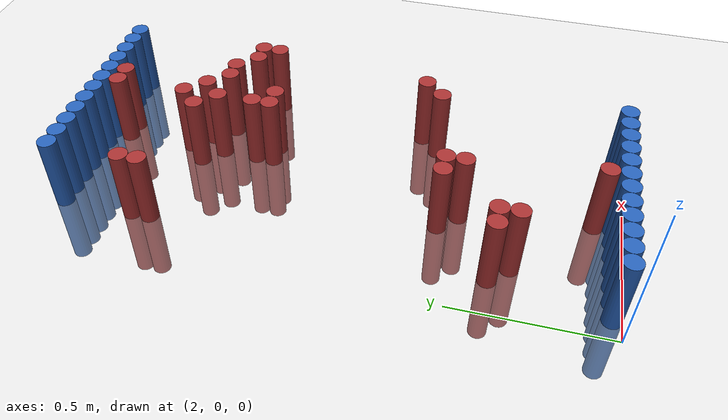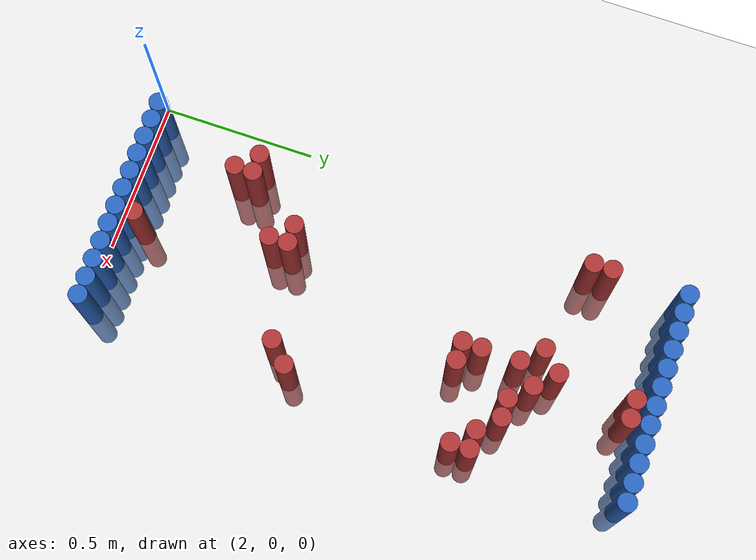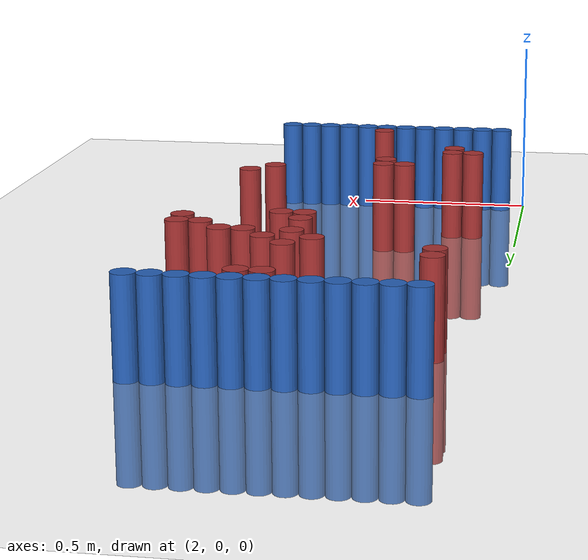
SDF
<sdf version="1.6">
 <world name="default">
  <model name="ground_plane">
   <static>1</static>
   <link name="link">
    <collision name="collision">
     <geometry><plane><normal>0 0 1</normal><size>100 100</size></plane></geometry>
     <surface><friction><ode><mu>100</mu><mu2>50</mu2></ode></friction></surface>
    </collision>
    <visual name="visual">
     <cast_shadows>0</cast_shadows>
     <geometry><plane><normal>0 0 1</normal><size>100 100</size></plane></geometry>
     <material>
      <script><uri>file://media/materials/scripts/gazebo.material</uri><name>Gazebo/Grey</name></script>
     </material>
    </visual>
   </link>
  </model>
  <model name="unit_cylinder_96">
   <static>1</static>
   <pose>2.130000 1.770000 0.000000 0.000000 0.000000 0.000000</pose>
   <link name="link">
    <inertial>
     <mass>1</mass>
     <inertia><ixx>0.145833</ixx><ixy>0</ixy><ixz>0</ixz><iyy>0.145833</iyy><iyz>0</iyz><izz>0.125</izz></inertia>
    </inertial>
    <collision name="collision">
     <geometry><cylinder><radius>0.030000</radius><length>0.5</length></cylinder></geometry>
    </collision>
    <visual name="visual">
     <geometry><cylinder><radius>0.030000</radius><length>0.5</length></cylinder></geometry>
     <material>
      <ambient>0.152000 0.379000 0.720000 1</ambient>
      <diffuse>0.152000 0.379000 0.720000 1</diffuse>
     </material>
     <material>
      <script><name>Gazebo/Grey</name><uri>file://media/materials/scripts/gazebo.material</uri></script>
     </material>
    </visual>
   </link>
  </model>
  <model name="unit_cylinder_97">
   <static>1</static>
   <pose>2.190000 1.770000 0.000000 0.000000 0.000000 0.000000</pose>
   <link name="link">
    <inertial>
     <mass>1</mass>
     <inertia><ixx>0.145833</ixx><ixy>0</ixy><ixz>0</ixz><iyy>0.145833</iyy><iyz>0</iyz><izz>0.125</izz></inertia>
    </inertial>
    <collision name="collision">
     <geometry><cylinder><radius>0.030000</radius><length>0.5</length></cylinder></geometry>
    </collision>
    <visual name="visual">
     <geometry><cylinder><radius>0.030000</radius><length>0.5</length></cylinder></geometry>
     <material>
      <ambient>0.152000 0.379000 0.720000 1</ambient>
      <diffuse>0.152000 0.379000 0.720000 1</diffuse>
     </material>
     <material>
      <script><name>Gazebo/Grey</name><uri>file://media/materials/scripts/gazebo.material</uri></script>
     </material>
    </visual>
   </link>
  </model>
  <model name="unit_cylinder_98">
   <static>1</static>
   <pose>2.250000 1.770000 0.000000 0.000000 0.000000 0.000000</pose>
   <link name="link">
    <inertial>
     <mass>1</mass>
     <inertia><ixx>0.145833</ixx><ixy>0</ixy><ixz>0</ixz><iyy>0.145833</iyy><iyz>0</iyz><izz>0.125</izz></inertia>
    </inertial>
    <collision name="collision">
     <geometry><cylinder><radius>0.030000</radius><length>0.5</length></cylinder></geometry>
    </collision>
    <visual name="visual">
     <geometry><cylinder><radius>0.030000</radius><length>0.5</length></cylinder></geometry>
     <material>
      <ambient>0.152000 0.379000 0.720000 1</ambient>
      <diffuse>0.152000 0.379000 0.720000 1</diffuse>
     </material>
     <material>
      <script><name>Gazebo/Grey</name><uri>file://media/materials/scripts/gazebo.material</uri></script>
     </material>
    </visual>
   </link>
  </model>
  <model name="unit_cylinder_99">
   <static>1</static>
   <pose>2.310000 1.770000 0.000000 0.000000 0.000000 0.000000</pose>
   <link name="link">
    <inertial>
     <mass>1</mass>
     <inertia><ixx>0.145833</ixx><ixy>0</ixy><ixz>0</ixz><iyy>0.145833</iyy><iyz>0</iyz><izz>0.125</izz></inertia>
    </inertial>
    <collision name="collision">
     <geometry><cylinder><radius>0.030000</radius><length>0.5</length></cylinder></geometry>
    </collision>
    <visual name="visual">
     <geometry><cylinder><radius>0.030000</radius><length>0.5</length></cylinder></geometry>
     <material>
      <ambient>0.152000 0.379000 0.720000 1</ambient>
      <diffuse>0.152000 0.379000 0.720000 1</diffuse>
     </material>
     <material>
      <script><name>Gazebo/Grey</name><uri>file://media/materials/scripts/gazebo.material</uri></script>
     </material>
    </visual>
   </link>
  </model>
  <model name="unit_cylinder_100">
   <static>1</static>
   <pose>2.370000 1.770000 0.000000 0.000000 0.000000 0.000000</pose>
   <link name="link">
    <inertial>
     <mass>1</mass>
     <inertia><ixx>0.145833</ixx><ixy>0</ixy><ixz>0</ixz><iyy>0.145833</iyy><iyz>0</iyz><izz>0.125</izz></inertia>
    </inertial>
    <collision name="collision">
     <geometry><cylinder><radius>0.030000</radius><length>0.5</length></cylinder></geometry>
    </collision>
    <visual name="visual">
     <geometry><cylinder><radius>0.030000</radius><length>0.5</length></cylinder></geometry>
     <material>
      <ambient>0.152000 0.379000 0.720000 1</ambient>
      <diffuse>0.152000 0.379000 0.720000 1</diffuse>
     </material>
     <material>
      <script><name>Gazebo/Grey</name><uri>file://media/materials/scripts/gazebo.material</uri></script>
     </material>
    </visual>
   </link>
  </model>
  <model name="unit_cylinder_101">
   <static>1</static>
   <pose>2.430000 1.770000 0.000000 0.000000 0.000000 0.000000</pose>
   <link name="link">
    <inertial>
     <mass>1</mass>
     <inertia><ixx>0.145833</ixx><ixy>0</ixy><ixz>0</ixz><iyy>0.145833</iyy><iyz>0</iyz><izz>0.125</izz></inertia>
    </inertial>
    <collision name="collision">
     <geometry><cylinder><radius>0.030000</radius><length>0.5</length></cylinder></geometry>
    </collision>
    <visual name="visual">
     <geometry><cylinder><radius>0.030000</radius><length>0.5</length></cylinder></geometry>
     <material>
      <ambient>0.152000 0.379000 0.720000 1</ambient>
      <diffuse>0.152000 0.379000 0.720000 1</diffuse>
     </material>
     <material>
      <script><name>Gazebo/Grey</name><uri>file://media/materials/scripts/gazebo.material</uri></script>
     </material>
    </visual>
   </link>
  </model>
  <model name="unit_cylinder_102">
   <static>1</static>
   <pose>2.490000 1.770000 0.000000 0.000000 0.000000 0.000000</pose>
   <link name="link">
    <inertial>
     <mass>1</mass>
     <inertia><ixx>0.145833</ixx><ixy>0</ixy><ixz>0</ixz><iyy>0.145833</iyy><iyz>0</iyz><izz>0.125</izz></inertia>
    </inertial>
    <collision name="collision">
     <geometry><cylinder><radius>0.030000</radius><length>0.5</length></cylinder></geometry>
    </collision>
    <visual name="visual">
     <geometry><cylinder><radius>0.030000</radius><length>0.5</length></cylinder></geometry>
     <material>
      <ambient>0.152000 0.379000 0.720000 1</ambient>
      <diffuse>0.152000 0.379000 0.720000 1</diffuse>
     </material>
     <material>
      <script><name>Gazebo/Grey</name><uri>file://media/materials/scripts/gazebo.material</uri></script>
     </material>
    </visual>
   </link>
  </model>
  <model name="unit_cylinder_103">
   <static>1</static>
   <pose>2.550000 1.770000 0.000000 0.000000 0.000000 0.000000</pose>
   <link name="link">
    <inertial>
     <mass>1</mass>
     <inertia><ixx>0.145833</ixx><ixy>0</ixy><ixz>0</ixz><iyy>0.145833</iyy><iyz>0</iyz><izz>0.125</izz></inertia>
    </inertial>
    <collision name="collision">
     <geometry><cylinder><radius>0.030000</radius><length>0.5</length></cylinder></geometry>
    </collision>
    <visual name="visual">
     <geometry><cylinder><radius>0.030000</radius><length>0.5</length></cylinder></geometry>
     <material>
      <ambient>0.152000 0.379000 0.720000 1</ambient>
      <diffuse>0.152000 0.379000 0.720000 1</diffuse>
     </material>
     <material>
      <script><name>Gazebo/Grey</name><uri>file://media/materials/scripts/gazebo.material</uri></script>
     </material>
    </visual>
   </link>
  </model>
  <model name="unit_cylinder_104">
   <static>1</static>
   <pose>2.610000 1.770000 0.000000 0.000000 0.000000 0.000000</pose>
   <link name="link">
    <inertial>
     <mass>1</mass>
     <inertia><ixx>0.145833</ixx><ixy>0</ixy><ixz>0</ixz><iyy>0.145833</iyy><iyz>0</iyz><izz>0.125</izz></inertia>
    </inertial>
    <collision name="collision">
     <geometry><cylinder><radius>0.030000</radius><length>0.5</length></cylinder></geometry>
    </collision>
    <visual name="visual">
     <geometry><cylinder><radius>0.030000</radius><length>0.5</length></cylinder></geometry>
     <material>
      <ambient>0.152000 0.379000 0.720000 1</ambient>
      <diffuse>0.152000 0.379000 0.720000 1</diffuse>
     </material>
     <material>
      <script><name>Gazebo/Grey</name><uri>file://media/materials/scripts/gazebo.material</uri></script>
     </material>
    </visual>
   </link>
  </model>
  <model name="unit_cylinder_105">
   <static>1</static>
   <pose>2.670000 1.770000 0.000000 0.000000 0.000000 0.000000</pose>
   <link name="link">
    <inertial>
     <mass>1</mass>
     <inertia><ixx>0.145833</ixx><ixy>0</ixy><ixz>0</ixz><iyy>0.145833</iyy><iyz>0</iyz><izz>0.125</izz></inertia>
    </inertial>
    <collision name="collision">
     <geometry><cylinder><radius>0.030000</radius><length>0.5</length></cylinder></geometry>
    </collision>
    <visual name="visual">
     <geometry><cylinder><radius>0.030000</radius><length>0.5</length></cylinder></geometry>
     <material>
      <ambient>0.152000 0.379000 0.720000 1</ambient>
      <diffuse>0.152000 0.379000 0.720000 1</diffuse>
     </material>
     <material>
      <script><name>Gazebo/Grey</name><uri>file://media/materials/scripts/gazebo.material</uri></script>
     </material>
    </visual>
   </link>
  </model>
  <model name="unit_cylinder_106">
   <static>1</static>
   <pose>2.730000 1.770000 0.000000 0.000000 0.000000 0.000000</pose>
   <link name="link">
    <inertial>
     <mass>1</mass>
     <inertia><ixx>0.145833</ixx><ixy>0</ixy><ixz>0</ixz><iyy>0.145833</iyy><iyz>0</iyz><izz>0.125</izz></inertia>
    </inertial>
    <collision name="collision">
     <geometry><cylinder><radius>0.030000</radius><length>0.5</length></cylinder></geometry>
    </collision>
    <visual name="visual">
     <geometry><cylinder><radius>0.030000</radius><length>0.5</length></cylinder></geometry>
     <material>
      <ambient>0.152000 0.379000 0.720000 1</ambient>
      <diffuse>0.152000 0.379000 0.720000 1</diffuse>
     </material>
     <material>
      <script><name>Gazebo/Grey</name><uri>file://media/materials/scripts/gazebo.material</uri></script>
     </material>
    </visual>
   </link>
  </model>
  <model name="unit_cylinder_107">
   <static>1</static>
   <pose>2.790000 1.770000 0.000000 0.000000 0.000000 0.000000</pose>
   <link name="link">
    <inertial>
     <mass>1</mass>
     <inertia><ixx>0.145833</ixx><ixy>0</ixy><ixz>0</ixz><iyy>0.145833</iyy><iyz>0</iyz><izz>0.125</izz></inertia>
    </inertial>
    <collision name="collision">
     <geometry><cylinder><radius>0.030000</radius><length>0.5</length></cylinder></geometry>
    </collision>
    <visual name="visual">
     <geometry><cylinder><radius>0.030000</radius><length>0.5</length></cylinder></geometry>
     <material>
      <ambient>0.152000 0.379000 0.720000 1</ambient>
      <diffuse>0.152000 0.379000 0.720000 1</diffuse>
     </material>
     <material>
      <script><name>Gazebo/Grey</name><uri>file://media/materials/scripts/gazebo.material</uri></script>
     </material>
    </visual>
   </link>
  </model>
  <model name="unit_cylinder_125">
   <static>1</static>
   <pose>2.490000 1.710000 0.000000 0.000000 0.000000 0.000000</pose>
   <link name="link">
    <inertial>
     <mass>1</mass>
     <inertia><ixx>0.145833</ixx><ixy>0</ixy><ixz>0</ixz><iyy>0.145833</iyy><iyz>0</iyz><izz>0.125</izz></inertia>
    </inertial>
    <collision name="collision">
     <geometry><cylinder><radius>0.030000</radius><length>0.5</length></cylinder></geometry>
    </collision>
    <visual name="visual">
     <geometry><cylinder><radius>0.030000</radius><length>0.5</length></cylinder></geometry>
     <material>
      <ambient>0.648000 0.192000 0.192000 1</ambient>
      <diffuse>0.648000 0.192000 0.192000 1</diffuse>
     </material>
     <material>
      <script><name>Gazebo/Grey</name><uri>file://media/materials/scripts/gazebo.material</uri></script>
     </material>
    </visual>
   </link>
  </model>
  <model name="unit_cylinder_126">
   <static>1</static>
   <pose>2.550000 1.710000 0.000000 0.000000 0.000000 0.000000</pose>
   <link name="link">
    <inertial>
     <mass>1</mass>
     <inertia><ixx>0.145833</ixx><ixy>0</ixy><ixz>0</ixz><iyy>0.145833</iyy><iyz>0</iyz><izz>0.125</izz></inertia>
    </inertial>
    <collision name="collision">
     <geometry><cylinder><radius>0.030000</radius><length>0.5</length></cylinder></geometry>
    </collision>
    <visual name="visual">
     <geometry><cylinder><radius>0.030000</radius><length>0.5</length></cylinder></geometry>
     <material>
      <ambient>0.648000 0.192000 0.192000 1</ambient>
      <diffuse>0.648000 0.192000 0.192000 1</diffuse>
     </material>
     <material>
      <script><name>Gazebo/Grey</name><uri>file://media/materials/scripts/gazebo.material</uri></script>
     </material>
    </visual>
   </link>
  </model>
  <model name="unit_cylinder_136">
   <static>1</static>
   <pose>2.130000 1.530000 0.000000 0.000000 0.000000 0.000000</pose>
   <link name="link">
    <inertial>
     <mass>1</mass>
     <inertia><ixx>0.145833</ixx><ixy>0</ixy><ixz>0</ixz><iyy>0.145833</iyy><iyz>0</iyz><izz>0.125</izz></inertia>
    </inertial>
    <collision name="collision">
     <geometry><cylinder><radius>0.030000</radius><length>0.5</length></cylinder></geometry>
    </collision>
    <visual name="visual">
     <geometry><cylinder><radius>0.030000</radius><length>0.5</length></cylinder></geometry>
     <material>
      <ambient>0.648000 0.192000 0.192000 1</ambient>
      <diffuse>0.648000 0.192000 0.192000 1</diffuse>
     </material>
     <material>
      <script><name>Gazebo/Grey</name><uri>file://media/materials/scripts/gazebo.material</uri></script>
     </material>
    </visual>
   </link>
  </model>
  <model name="unit_cylinder_138">
   <static>1</static>
   <pose>2.130000 1.470000 0.000000 0.000000 0.000000 0.000000</pose>
   <link name="link">
    <inertial>
     <mass>1</mass>
     <inertia><ixx>0.145833</ixx><ixy>0</ixy><ixz>0</ixz><iyy>0.145833</iyy><iyz>0</iyz><izz>0.125</izz></inertia>
    </inertial>
    <collision name="collision">
     <geometry><cylinder><radius>0.030000</radius><length>0.5</length></cylinder></geometry>
    </collision>
    <visual name="visual">
     <geometry><cylinder><radius>0.030000</radius><length>0.5</length></cylinder></geometry>
     <material>
      <ambient>0.648000 0.192000 0.192000 1</ambient>
      <diffuse>0.648000 0.192000 0.192000 1</diffuse>
     </material>
     <material>
      <script><name>Gazebo/Grey</name><uri>file://media/materials/scripts/gazebo.material</uri></script>
     </material>
    </visual>
   </link>
  </model>
  <model name="unit_cylinder_139">
   <static>1</static>
   <pose>2.490000 1.470000 0.000000 0.000000 0.000000 0.000000</pose>
   <link name="link">
    <inertial>
     <mass>1</mass>
     <inertia><ixx>0.145833</ixx><ixy>0</ixy><ixz>0</ixz><iyy>0.145833</iyy><iyz>0</iyz><izz>0.125</izz></inertia>
    </inertial>
    <collision name="collision">
     <geometry><cylinder><radius>0.030000</radius><length>0.5</length></cylinder></geometry>
    </collision>
    <visual name="visual">
     <geometry><cylinder><radius>0.030000</radius><length>0.5</length></cylinder></geometry>
     <material>
      <ambient>0.648000 0.192000 0.192000 1</ambient>
      <diffuse>0.648000 0.192000 0.192000 1</diffuse>
     </material>
     <material>
      <script><name>Gazebo/Grey</name><uri>file://media/materials/scripts/gazebo.material</uri></script>
     </material>
    </visual>
   </link>
  </model>
  <model name="unit_cylinder_140">
   <static>1</static>
   <pose>2.430000 1.410000 0.000000 0.000000 0.000000 0.000000</pose>
   <link name="link">
    <inertial>
     <mass>1</mass>
     <inertia><ixx>0.145833</ixx><ixy>0</ixy><ixz>0</ixz><iyy>0.145833</iyy><iyz>0</iyz><izz>0.125</izz></inertia>
    </inertial>
    <collision name="collision">
     <geometry><cylinder><radius>0.030000</radius><length>0.5</length></cylinder></geometry>
    </collision>
    <visual name="visual">
     <geometry><cylinder><radius>0.030000</radius><length>0.5</length></cylinder></geometry>
     <material>
      <ambient>0.648000 0.192000 0.192000 1</ambient>
      <diffuse>0.648000 0.192000 0.192000 1</diffuse>
     </material>
     <material>
      <script><name>Gazebo/Grey</name><uri>file://media/materials/scripts/gazebo.material</uri></script>
     </material>
    </visual>
   </link>
  </model>
  <model name="unit_cylinder_141">
   <static>1</static>
   <pose>2.550000 1.410000 0.000000 0.000000 0.000000 0.000000</pose>
   <link name="link">
    <inertial>
     <mass>1</mass>
     <inertia><ixx>0.145833</ixx><ixy>0</ixy><ixz>0</ixz><iyy>0.145833</iyy><iyz>0</iyz><izz>0.125</izz></inertia>
    </inertial>
    <collision name="collision">
     <geometry><cylinder><radius>0.030000</radius><length>0.5</length></cylinder></geometry>
    </collision>
    <visual name="visual">
     <geometry><cylinder><radius>0.030000</radius><length>0.5</length></cylinder></geometry>
     <material>
      <ambient>0.648000 0.192000 0.192000 1</ambient>
      <diffuse>0.648000 0.192000 0.192000 1</diffuse>
     </material>
     <material>
      <script><name>Gazebo/Grey</name><uri>file://media/materials/scripts/gazebo.material</uri></script>
     </material>
    </visual>
   </link>
  </model>
  <model name="unit_cylinder_142">
   <static>1</static>
   <pose>2.490000 1.350000 0.000000 0.000000 0.000000 0.000000</pose>
   <link name="link">
    <inertial>
     <mass>1</mass>
     <inertia><ixx>0.145833</ixx><ixy>0</ixy><ixz>0</ixz><iyy>0.145833</iyy><iyz>0</iyz><izz>0.125</izz></inertia>
    </inertial>
    <collision name="collision">
     <geometry><cylinder><radius>0.030000</radius><length>0.5</length></cylinder></geometry>
    </collision>
    <visual name="visual">
     <geometry><cylinder><radius>0.030000</radius><length>0.5</length></cylinder></geometry>
     <material>
      <ambient>0.648000 0.192000 0.192000 1</ambient>
      <diffuse>0.648000 0.192000 0.192000 1</diffuse>
     </material>
     <material>
      <script><name>Gazebo/Grey</name><uri>file://media/materials/scripts/gazebo.material</uri></script>
     </material>
    </visual>
   </link>
  </model>
  <model name="unit_cylinder_143">
   <static>1</static>
   <pose>2.610000 1.350000 0.000000 0.000000 0.000000 0.000000</pose>
   <link name="link">
    <inertial>
     <mass>1</mass>
     <inertia><ixx>0.145833</ixx><ixy>0</ixy><ixz>0</ixz><iyy>0.145833</iyy><iyz>0</iyz><izz>0.125</izz></inertia>
    </inertial>
    <collision name="collision">
     <geometry><cylinder><radius>0.030000</radius><length>0.5</length></cylinder></geometry>
    </collision>
    <visual name="visual">
     <geometry><cylinder><radius>0.030000</radius><length>0.5</length></cylinder></geometry>
     <material>
      <ambient>0.648000 0.192000 0.192000 1</ambient>
      <diffuse>0.648000 0.192000 0.192000 1</diffuse>
     </material>
     <material>
      <script><name>Gazebo/Grey</name><uri>file://media/materials/scripts/gazebo.material</uri></script>
     </material>
    </visual>
   </link>
  </model>
  <model name="unit_cylinder_144">
   <static>1</static>
   <pose>2.670000 1.350000 0.000000 0.000000 0.000000 0.000000</pose>
   <link name="link">
    <inertial>
     <mass>1</mass>
     <inertia><ixx>0.145833</ixx><ixy>0</ixy><ixz>0</ixz><iyy>0.145833</iyy><iyz>0</iyz><izz>0.125</izz></inertia>
    </inertial>
    <collision name="collision">
     <geometry><cylinder><radius>0.030000</radius><length>0.5</length></cylinder></geometry>
    </collision>
    <visual name="visual">
     <geometry><cylinder><radius>0.030000</radius><length>0.5</length></cylinder></geometry>
     <material>
      <ambient>0.648000 0.192000 0.192000 1</ambient>
      <diffuse>0.648000 0.192000 0.192000 1</diffuse>
     </material>
     <material>
      <script><name>Gazebo/Grey</name><uri>file://media/materials/scripts/gazebo.material</uri></script>
     </material>
    </visual>
   </link>
  </model>
  <model name="unit_cylinder_145">
   <static>1</static>
   <pose>2.730000 1.290000 0.000000 0.000000 0.000000 0.000000</pose>
   <link name="link">
    <inertial>
     <mass>1</mass>
     <inertia><ixx>0.145833</ixx><ixy>0</ixy><ixz>0</ixz><iyy>0.145833</iyy><iyz>0</iyz><izz>0.125</izz></inertia>
    </inertial>
    <collision name="collision">
     <geometry><cylinder><radius>0.030000</radius><length>0.5</length></cylinder></geometry>
    </collision>
    <visual name="visual">
     <geometry><cylinder><radius>0.030000</radius><length>0.5</length></cylinder></geometry>
     <material>
      <ambient>0.648000 0.192000 0.192000 1</ambient>
      <diffuse>0.648000 0.192000 0.192000 1</diffuse>
     </material>
     <material>
      <script><name>Gazebo/Grey</name><uri>file://media/materials/scripts/gazebo.material</uri></script>
     </material>
    </visual>
   </link>
  </model>
  <model name="unit_cylinder_146">
   <static>1</static>
   <pose>2.790000 1.290000 0.000000 0.000000 0.000000 0.000000</pose>
   <link name="link">
    <inertial>
     <mass>1</mass>
     <inertia><ixx>0.145833</ixx><ixy>0</ixy><ixz>0</ixz><iyy>0.145833</iyy><iyz>0</iyz><izz>0.125</izz></inertia>
    </inertial>
    <collision name="collision">
     <geometry><cylinder><radius>0.030000</radius><length>0.5</length></cylinder></geometry>
    </collision>
    <visual name="visual">
     <geometry><cylinder><radius>0.030000</radius><length>0.5</length></cylinder></geometry>
     <material>
      <ambient>0.648000 0.192000 0.192000 1</ambient>
      <diffuse>0.648000 0.192000 0.192000 1</diffuse>
     </material>
     <material>
      <script><name>Gazebo/Grey</name><uri>file://media/materials/scripts/gazebo.material</uri></script>
     </material>
    </visual>
   </link>
  </model>
  <model name="unit_cylinder_151">
   <static>1</static>
   <pose>2.490000 1.230000 0.000000 0.000000 0.000000 0.000000</pose>
   <link name="link">
    <inertial>
     <mass>1</mass>
     <inertia><ixx>0.145833</ixx><ixy>0</ixy><ixz>0</ixz><iyy>0.145833</iyy><iyz>0</iyz><izz>0.125</izz></inertia>
    </inertial>
    <collision name="collision">
     <geometry><cylinder><radius>0.030000</radius><length>0.5</length></cylinder></geometry>
    </collision>
    <visual name="visual">
     <geometry><cylinder><radius>0.030000</radius><length>0.5</length></cylinder></geometry>
     <material>
      <ambient>0.648000 0.192000 0.192000 1</ambient>
      <diffuse>0.648000 0.192000 0.192000 1</diffuse>
     </material>
     <material>
      <script><name>Gazebo/Grey</name><uri>file://media/materials/scripts/gazebo.material</uri></script>
     </material>
    </visual>
   </link>
  </model>
  <model name="unit_cylinder_152">
   <static>1</static>
   <pose>2.790000 1.230000 0.000000 0.000000 0.000000 0.000000</pose>
   <link name="link">
    <inertial>
     <mass>1</mass>
     <inertia><ixx>0.145833</ixx><ixy>0</ixy><ixz>0</ixz><iyy>0.145833</iyy><iyz>0</iyz><izz>0.125</izz></inertia>
    </inertial>
    <collision name="collision">
     <geometry><cylinder><radius>0.030000</radius><length>0.5</length></cylinder></geometry>
    </collision>
    <visual name="visual">
     <geometry><cylinder><radius>0.030000</radius><length>0.5</length></cylinder></geometry>
     <material>
      <ambient>0.648000 0.192000 0.192000 1</ambient>
      <diffuse>0.648000 0.192000 0.192000 1</diffuse>
     </material>
     <material>
      <script><name>Gazebo/Grey</name><uri>file://media/materials/scripts/gazebo.material</uri></script>
     </material>
    </visual>
   </link>
  </model>
  <model name="unit_cylinder_155">
   <static>1</static>
   <pose>2.490000 1.170000 0.000000 0.000000 0.000000 0.000000</pose>
   <link name="link">
    <inertial>
     <mass>1</mass>
     <inertia><ixx>0.145833</ixx><ixy>0</ixy><ixz>0</ixz><iyy>0.145833</iyy><iyz>0</iyz><izz>0.125</izz></inertia>
    </inertial>
    <collision name="collision">
     <geometry><cylinder><radius>0.030000</radius><length>0.5</length></cylinder></geometry>
    </collision>
    <visual name="visual">
     <geometry><cylinder><radius>0.030000</radius><length>0.5</length></cylinder></geometry>
     <material>
      <ambient>0.648000 0.192000 0.192000 1</ambient>
      <diffuse>0.648000 0.192000 0.192000 1</diffuse>
     </material>
     <material>
      <script><name>Gazebo/Grey</name><uri>file://media/materials/scripts/gazebo.material</uri></script>
     </material>
    </visual>
   </link>
  </model>
  <model name="unit_cylinder_156">
   <static>1</static>
   <pose>2.550000 1.170000 0.000000 0.000000 0.000000 0.000000</pose>
   <link name="link">
    <inertial>
     <mass>1</mass>
     <inertia><ixx>0.145833</ixx><ixy>0</ixy><ixz>0</ixz><iyy>0.145833</iyy><iyz>0</iyz><izz>0.125</izz></inertia>
    </inertial>
    <collision name="collision">
     <geometry><cylinder><radius>0.030000</radius><length>0.5</length></cylinder></geometry>
    </collision>
    <visual name="visual">
     <geometry><cylinder><radius>0.030000</radius><length>0.5</length></cylinder></geometry>
     <material>
      <ambient>0.648000 0.192000 0.192000 1</ambient>
      <diffuse>0.648000 0.192000 0.192000 1</diffuse>
     </material>
     <material>
      <script><name>Gazebo/Grey</name><uri>file://media/materials/scripts/gazebo.material</uri></script>
     </material>
    </visual>
   </link>
  </model>
  <model name="unit_cylinder_178">
   <static>1</static>
   <pose>2.730000 0.690000 0.000000 0.000000 0.000000 0.000000</pose>
   <link name="link">
    <inertial>
     <mass>1</mass>
     <inertia><ixx>0.145833</ixx><ixy>0</ixy><ixz>0</ixz><iyy>0.145833</iyy><iyz>0</iyz><izz>0.125</izz></inertia>
    </inertial>
    <collision name="collision">
     <geometry><cylinder><radius>0.030000</radius><length>0.5</length></cylinder></geometry>
    </collision>
    <visual name="visual">
     <geometry><cylinder><radius>0.030000</radius><length>0.5</length></cylinder></geometry>
     <material>
      <ambient>0.648000 0.192000 0.192000 1</ambient>
      <diffuse>0.648000 0.192000 0.192000 1</diffuse>
     </material>
     <material>
      <script><name>Gazebo/Grey</name><uri>file://media/materials/scripts/gazebo.material</uri></script>
     </material>
    </visual>
   </link>
  </model>
  <model name="unit_cylinder_184">
   <static>1</static>
   <pose>2.670000 0.630000 0.000000 0.000000 0.000000 0.000000</pose>
   <link name="link">
    <inertial>
     <mass>1</mass>
     <inertia><ixx>0.145833</ixx><ixy>0</ixy><ixz>0</ixz><iyy>0.145833</iyy><iyz>0</iyz><izz>0.125</izz></inertia>
    </inertial>
    <collision name="collision">
     <geometry><cylinder><radius>0.030000</radius><length>0.5</length></cylinder></geometry>
    </collision>
    <visual name="visual">
     <geometry><cylinder><radius>0.030000</radius><length>0.5</length></cylinder></geometry>
     <material>
      <ambient>0.648000 0.192000 0.192000 1</ambient>
      <diffuse>0.648000 0.192000 0.192000 1</diffuse>
     </material>
     <material>
      <script><name>Gazebo/Grey</name><uri>file://media/materials/scripts/gazebo.material</uri></script>
     </material>
    </visual>
   </link>
  </model>
  <model name="unit_cylinder_189">
   <static>1</static>
   <pose>2.310000 0.570000 0.000000 0.000000 0.000000 0.000000</pose>
   <link name="link">
    <inertial>
     <mass>1</mass>
     <inertia><ixx>0.145833</ixx><ixy>0</ixy><ixz>0</ixz><iyy>0.145833</iyy><iyz>0</iyz><izz>0.125</izz></inertia>
    </inertial>
    <collision name="collision">
     <geometry><cylinder><radius>0.030000</radius><length>0.5</length></cylinder></geometry>
    </collision>
    <visual name="visual">
     <geometry><cylinder><radius>0.030000</radius><length>0.5</length></cylinder></geometry>
     <material>
      <ambient>0.648000 0.192000 0.192000 1</ambient>
      <diffuse>0.648000 0.192000 0.192000 1</diffuse>
     </material>
     <material>
      <script><name>Gazebo/Grey</name><uri>file://media/materials/scripts/gazebo.material</uri></script>
     </material>
    </visual>
   </link>
  </model>
  <model name="unit_cylinder_190">
   <static>1</static>
   <pose>2.370000 0.570000 0.000000 0.000000 0.000000 0.000000</pose>
   <link name="link">
    <inertial>
     <mass>1</mass>
     <inertia><ixx>0.145833</ixx><ixy>0</ixy><ixz>0</ixz><iyy>0.145833</iyy><iyz>0</iyz><izz>0.125</izz></inertia>
    </inertial>
    <collision name="collision">
     <geometry><cylinder><radius>0.030000</radius><length>0.5</length></cylinder></geometry>
    </collision>
    <visual name="visual">
     <geometry><cylinder><radius>0.030000</radius><length>0.5</length></cylinder></geometry>
     <material>
      <ambient>0.648000 0.192000 0.192000 1</ambient>
      <diffuse>0.648000 0.192000 0.192000 1</diffuse>
     </material>
     <material>
      <script><name>Gazebo/Grey</name><uri>file://media/materials/scripts/gazebo.material</uri></script>
     </material>
    </visual>
   </link>
  </model>
  <model name="unit_cylinder_194">
   <static>1</static>
   <pose>2.370000 0.510000 0.000000 0.000000 0.000000 0.000000</pose>
   <link name="link">
    <inertial>
     <mass>1</mass>
     <inertia><ixx>0.145833</ixx><ixy>0</ixy><ixz>0</ixz><iyy>0.145833</iyy><iyz>0</iyz><izz>0.125</izz></inertia>
    </inertial>
    <collision name="collision">
     <geometry><cylinder><radius>0.030000</radius><length>0.5</length></cylinder></geometry>
    </collision>
    <visual name="visual">
     <geometry><cylinder><radius>0.030000</radius><length>0.5</length></cylinder></geometry>
     <material>
      <ambient>0.648000 0.192000 0.192000 1</ambient>
      <diffuse>0.648000 0.192000 0.192000 1</diffuse>
     </material>
     <material>
      <script><name>Gazebo/Grey</name><uri>file://media/materials/scripts/gazebo.material</uri></script>
     </material>
    </visual>
   </link>
  </model>
  <model name="unit_cylinder_203">
   <static>1</static>
   <pose>2.130000 0.390000 0.000000 0.000000 0.000000 0.000000</pose>
   <link name="link">
    <inertial>
     <mass>1</mass>
     <inertia><ixx>0.145833</ixx><ixy>0</ixy><ixz>0</ixz><iyy>0.145833</iyy><iyz>0</iyz><izz>0.125</izz></inertia>
    </inertial>
    <collision name="collision">
     <geometry><cylinder><radius>0.030000</radius><length>0.5</length></cylinder></geometry>
    </collision>
    <visual name="visual">
     <geometry><cylinder><radius>0.030000</radius><length>0.5</length></cylinder></geometry>
     <material>
      <ambient>0.648000 0.192000 0.192000 1</ambient>
      <diffuse>0.648000 0.192000 0.192000 1</diffuse>
     </material>
     <material>
      <script><name>Gazebo/Grey</name><uri>file://media/materials/scripts/gazebo.material</uri></script>
     </material>
    </visual>
   </link>
  </model>
  <model name="unit_cylinder_204">
   <static>1</static>
   <pose>2.190000 0.390000 0.000000 0.000000 0.000000 0.000000</pose>
   <link name="link">
    <inertial>
     <mass>1</mass>
     <inertia><ixx>0.145833</ixx><ixy>0</ixy><ixz>0</ixz><iyy>0.145833</iyy><iyz>0</iyz><izz>0.125</izz></inertia>
    </inertial>
    <collision name="collision">
     <geometry><cylinder><radius>0.030000</radius><length>0.5</length></cylinder></geometry>
    </collision>
    <visual name="visual">
     <geometry><cylinder><radius>0.030000</radius><length>0.5</length></cylinder></geometry>
     <material>
      <ambient>0.648000 0.192000 0.192000 1</ambient>
      <diffuse>0.648000 0.192000 0.192000 1</diffuse>
     </material>
     <material>
      <script><name>Gazebo/Grey</name><uri>file://media/materials/scripts/gazebo.material</uri></script>
     </material>
    </visual>
   </link>
  </model>
  <model name="unit_cylinder_208">
   <static>1</static>
   <pose>2.190000 0.330000 0.000000 0.000000 0.000000 0.000000</pose>
   <link name="link">
    <inertial>
     <mass>1</mass>
     <inertia><ixx>0.145833</ixx><ixy>0</ixy><ixz>0</ixz><iyy>0.145833</iyy><iyz>0</iyz><izz>0.125</izz></inertia>
    </inertial>
    <collision name="collision">
     <geometry><cylinder><radius>0.030000</radius><length>0.5</length></cylinder></geometry>
    </collision>
    <visual name="visual">
     <geometry><cylinder><radius>0.030000</radius><length>0.5</length></cylinder></geometry>
     <material>
      <ambient>0.648000 0.192000 0.192000 1</ambient>
      <diffuse>0.648000 0.192000 0.192000 1</diffuse>
     </material>
     <material>
      <script><name>Gazebo/Grey</name><uri>file://media/materials/scripts/gazebo.material</uri></script>
     </material>
    </visual>
   </link>
  </model>
  <model name="unit_cylinder_209">
   <static>1</static>
   <pose>2.430000 0.090000 0.000000 0.000000 0.000000 0.000000</pose>
   <link name="link">
    <inertial>
     <mass>1</mass>
     <inertia><ixx>0.145833</ixx><ixy>0</ixy><ixz>0</ixz><iyy>0.145833</iyy><iyz>0</iyz><izz>0.125</izz></inertia>
    </inertial>
    <collision name="collision">
     <geometry><cylinder><radius>0.030000</radius><length>0.5</length></cylinder></geometry>
    </collision>
    <visual name="visual">
     <geometry><cylinder><radius>0.030000</radius><length>0.5</length></cylinder></geometry>
     <material>
      <ambient>0.648000 0.192000 0.192000 1</ambient>
      <diffuse>0.648000 0.192000 0.192000 1</diffuse>
     </material>
     <material>
      <script><name>Gazebo/Grey</name><uri>file://media/materials/scripts/gazebo.material</uri></script>
     </material>
    </visual>
   </link>
  </model>
  <model name="unit_cylinder_213">
   <static>1</static>
   <pose>2.070000 0.030000 0.000000 0.000000 0.000000 0.000000</pose>
   <link name="link">
    <inertial>
     <mass>1</mass>
     <inertia><ixx>0.145833</ixx><ixy>0</ixy><ixz>0</ixz><iyy>0.145833</iyy><iyz>0</iyz><izz>0.125</izz></inertia>
    </inertial>
    <collision name="collision">
     <geometry><cylinder><radius>0.030000</radius><length>0.5</length></cylinder></geometry>
    </collision>
    <visual name="visual">
     <geometry><cylinder><radius>0.030000</radius><length>0.5</length></cylinder></geometry>
     <material>
      <ambient>0.152000 0.379000 0.720000 1</ambient>
      <diffuse>0.152000 0.379000 0.720000 1</diffuse>
     </material>
     <material>
      <script><name>Gazebo/Grey</name><uri>file://media/materials/scripts/gazebo.material</uri></script>
     </material>
    </visual>
   </link>
  </model>
  <model name="unit_cylinder_214">
   <static>1</static>
   <pose>2.130000 0.030000 0.000000 0.000000 0.000000 0.000000</pose>
   <link name="link">
    <inertial>
     <mass>1</mass>
     <inertia><ixx>0.145833</ixx><ixy>0</ixy><ixz>0</ixz><iyy>0.145833</iyy><iyz>0</iyz><izz>0.125</izz></inertia>
    </inertial>
    <collision name="collision">
     <geometry><cylinder><radius>0.030000</radius><length>0.5</length></cylinder></geometry>
    </collision>
    <visual name="visual">
     <geometry><cylinder><radius>0.030000</radius><length>0.5</length></cylinder></geometry>
     <material>
      <ambient>0.152000 0.379000 0.720000 1</ambient>
      <diffuse>0.152000 0.379000 0.720000 1</diffuse>
     </material>
     <material>
      <script><name>Gazebo/Grey</name><uri>file://media/materials/scripts/gazebo.material</uri></script>
     </material>
    </visual>
   </link>
  </model>
  <model name="unit_cylinder_215">
   <static>1</static>
   <pose>2.190000 0.030000 0.000000 0.000000 0.000000 0.000000</pose>
   <link name="link">
    <inertial>
     <mass>1</mass>
     <inertia><ixx>0.145833</ixx><ixy>0</ixy><ixz>0</ixz><iyy>0.145833</iyy><iyz>0</iyz><izz>0.125</izz></inertia>
    </inertial>
    <collision name="collision">
     <geometry><cylinder><radius>0.030000</radius><length>0.5</length></cylinder></geometry>
    </collision>
    <visual name="visual">
     <geometry><cylinder><radius>0.030000</radius><length>0.5</length></cylinder></geometry>
     <material>
      <ambient>0.152000 0.379000 0.720000 1</ambient>
      <diffuse>0.152000 0.379000 0.720000 1</diffuse>
     </material>
     <material>
      <script><name>Gazebo/Grey</name><uri>file://media/materials/scripts/gazebo.material</uri></script>
     </material>
    </visual>
   </link>
  </model>
  <model name="unit_cylinder_216">
   <static>1</static>
   <pose>2.250000 0.030000 0.000000 0.000000 0.000000 0.000000</pose>
   <link name="link">
    <inertial>
     <mass>1</mass>
     <inertia><ixx>0.145833</ixx><ixy>0</ixy><ixz>0</ixz><iyy>0.145833</iyy><iyz>0</iyz><izz>0.125</izz></inertia>
    </inertial>
    <collision name="collision">
     <geometry><cylinder><radius>0.030000</radius><length>0.5</length></cylinder></geometry>
    </collision>
    <visual name="visual">
     <geometry><cylinder><radius>0.030000</radius><length>0.5</length></cylinder></geometry>
     <material>
      <ambient>0.152000 0.379000 0.720000 1</ambient>
      <diffuse>0.152000 0.379000 0.720000 1</diffuse>
     </material>
     <material>
      <script><name>Gazebo/Grey</name><uri>file://media/materials/scripts/gazebo.material</uri></script>
     </material>
    </visual>
   </link>
  </model>
  <model name="unit_cylinder_217">
   <static>1</static>
   <pose>2.310000 0.030000 0.000000 0.000000 0.000000 0.000000</pose>
   <link name="link">
    <inertial>
     <mass>1</mass>
     <inertia><ixx>0.145833</ixx><ixy>0</ixy><ixz>0</ixz><iyy>0.145833</iyy><iyz>0</iyz><izz>0.125</izz></inertia>
    </inertial>
    <collision name="collision">
     <geometry><cylinder><radius>0.030000</radius><length>0.5</length></cylinder></geometry>
    </collision>
    <visual name="visual">
     <geometry><cylinder><radius>0.030000</radius><length>0.5</length></cylinder></geometry>
     <material>
      <ambient>0.152000 0.379000 0.720000 1</ambient>
      <diffuse>0.152000 0.379000 0.720000 1</diffuse>
     </material>
     <material>
      <script><name>Gazebo/Grey</name><uri>file://media/materials/scripts/gazebo.material</uri></script>
     </material>
    </visual>
   </link>
  </model>
  <model name="unit_cylinder_218">
   <static>1</static>
   <pose>2.370000 0.030000 0.000000 0.000000 0.000000 0.000000</pose>
   <link name="link">
    <inertial>
     <mass>1</mass>
     <inertia><ixx>0.145833</ixx><ixy>0</ixy><ixz>0</ixz><iyy>0.145833</iyy><iyz>0</iyz><izz>0.125</izz></inertia>
    </inertial>
    <collision name="collision">
     <geometry><cylinder><radius>0.030000</radius><length>0.5</length></cylinder></geometry>
    </collision>
    <visual name="visual">
     <geometry><cylinder><radius>0.030000</radius><length>0.5</length></cylinder></geometry>
     <material>
      <ambient>0.152000 0.379000 0.720000 1</ambient>
      <diffuse>0.152000 0.379000 0.720000 1</diffuse>
     </material>
     <material>
      <script><name>Gazebo/Grey</name><uri>file://media/materials/scripts/gazebo.material</uri></script>
     </material>
    </visual>
   </link>
  </model>
  <model name="unit_cylinder_219">
   <static>1</static>
   <pose>2.430000 0.030000 0.000000 0.000000 0.000000 0.000000</pose>
   <link name="link">
    <inertial>
     <mass>1</mass>
     <inertia><ixx>0.145833</ixx><ixy>0</ixy><ixz>0</ixz><iyy>0.145833</iyy><iyz>0</iyz><izz>0.125</izz></inertia>
    </inertial>
    <collision name="collision">
     <geometry><cylinder><radius>0.030000</radius><length>0.5</length></cylinder></geometry>
    </collision>
    <visual name="visual">
     <geometry><cylinder><radius>0.030000</radius><length>0.5</length></cylinder></geometry>
     <material>
      <ambient>0.152000 0.379000 0.720000 1</ambient>
      <diffuse>0.152000 0.379000 0.720000 1</diffuse>
     </material>
     <material>
      <script><name>Gazebo/Grey</name><uri>file://media/materials/scripts/gazebo.material</uri></script>
     </material>
    </visual>
   </link>
  </model>
  <model name="unit_cylinder_220">
   <static>1</static>
   <pose>2.490000 0.030000 0.000000 0.000000 0.000000 0.000000</pose>
   <link name="link">
    <inertial>
     <mass>1</mass>
     <inertia><ixx>0.145833</ixx><ixy>0</ixy><ixz>0</ixz><iyy>0.145833</iyy><iyz>0</iyz><izz>0.125</izz></inertia>
    </inertial>
    <collision name="collision">
     <geometry><cylinder><radius>0.030000</radius><length>0.5</length></cylinder></geometry>
    </collision>
    <visual name="visual">
     <geometry><cylinder><radius>0.030000</radius><length>0.5</length></cylinder></geometry>
     <material>
      <ambient>0.152000 0.379000 0.720000 1</ambient>
      <diffuse>0.152000 0.379000 0.720000 1</diffuse>
     </material>
     <material>
      <script><name>Gazebo/Grey</name><uri>file://media/materials/scripts/gazebo.material</uri></script>
     </material>
    </visual>
   </link>
  </model>
  <model name="unit_cylinder_221">
   <static>1</static>
   <pose>2.550000 0.030000 0.000000 0.000000 0.000000 0.000000</pose>
   <link name="link">
    <inertial>
     <mass>1</mass>
     <inertia><ixx>0.145833</ixx><ixy>0</ixy><ixz>0</ixz><iyy>0.145833</iyy><iyz>0</iyz><izz>0.125</izz></inertia>
    </inertial>
    <collision name="collision">
     <geometry><cylinder><radius>0.030000</radius><length>0.5</length></cylinder></geometry>
    </collision>
    <visual name="visual">
     <geometry><cylinder><radius>0.030000</radius><length>0.5</length></cylinder></geometry>
     <material>
      <ambient>0.152000 0.379000 0.720000 1</ambient>
      <diffuse>0.152000 0.379000 0.720000 1</diffuse>
     </material>
     <material>
      <script><name>Gazebo/Grey</name><uri>file://media/materials/scripts/gazebo.material</uri></script>
     </material>
    </visual>
   </link>
  </model>
  <model name="unit_cylinder_222">
   <static>1</static>
   <pose>2.610000 0.030000 0.000000 0.000000 0.000000 0.000000</pose>
   <link name="link">
    <inertial>
     <mass>1</mass>
     <inertia><ixx>0.145833</ixx><ixy>0</ixy><ixz>0</ixz><iyy>0.145833</iyy><iyz>0</iyz><izz>0.125</izz></inertia>
    </inertial>
    <collision name="collision">
     <geometry><cylinder><radius>0.030000</radius><length>0.5</length></cylinder></geometry>
    </collision>
    <visual name="visual">
     <geometry><cylinder><radius>0.030000</radius><length>0.5</length></cylinder></geometry>
     <material>
      <ambient>0.152000 0.379000 0.720000 1</ambient>
      <diffuse>0.152000 0.379000 0.720000 1</diffuse>
     </material>
     <material>
      <script><name>Gazebo/Grey</name><uri>file://media/materials/scripts/gazebo.material</uri></script>
     </material>
    </visual>
   </link>
  </model>
  <model name="unit_cylinder_223">
   <static>1</static>
   <pose>2.670000 0.030000 0.000000 0.000000 0.000000 0.000000</pose>
   <link name="link">
    <inertial>
     <mass>1</mass>
     <inertia><ixx>0.145833</ixx><ixy>0</ixy><ixz>0</ixz><iyy>0.145833</iyy><iyz>0</iyz><izz>0.125</izz></inertia>
    </inertial>
    <collision name="collision">
     <geometry><cylinder><radius>0.030000</radius><length>0.5</length></cylinder></geometry>
    </collision>
    <visual name="visual">
     <geometry><cylinder><radius>0.030000</radius><length>0.5</length></cylinder></geometry>
     <material>
      <ambient>0.152000 0.379000 0.720000 1</ambient>
      <diffuse>0.152000 0.379000 0.720000 1</diffuse>
     </material>
     <material>
      <script><name>Gazebo/Grey</name><uri>file://media/materials/scripts/gazebo.material</uri></script>
     </material>
    </visual>
   </link>
  </model>
  <model name="unit_cylinder_224">
   <static>1</static>
   <pose>2.730000 0.030000 0.000000 0.000000 0.000000 0.000000</pose>
   <link name="link">
    <inertial>
     <mass>1</mass>
     <inertia><ixx>0.145833</ixx><ixy>0</ixy><ixz>0</ixz><iyy>0.145833</iyy><iyz>0</iyz><izz>0.125</izz></inertia>
    </inertial>
    <collision name="collision">
     <geometry><cylinder><radius>0.030000</radius><length>0.5</length></cylinder></geometry>
    </collision>
    <visual name="visual">
     <geometry><cylinder><radius>0.030000</radius><length>0.5</length></cylinder></geometry>
     <material>
      <ambient>0.152000 0.379000 0.720000 1</ambient>
      <diffuse>0.152000 0.379000 0.720000 1</diffuse>
     </material>
     <material>
      <script><name>Gazebo/Grey</name><uri>file://media/materials/scripts/gazebo.material</uri></script>
     </material>
    </visual>
   </link>
  </model>
 </world>
</sdf>
